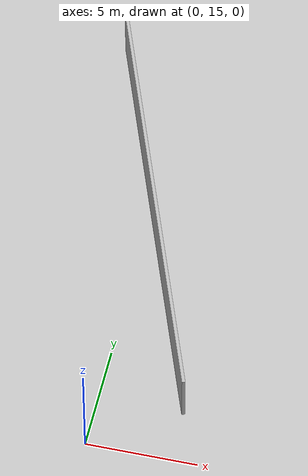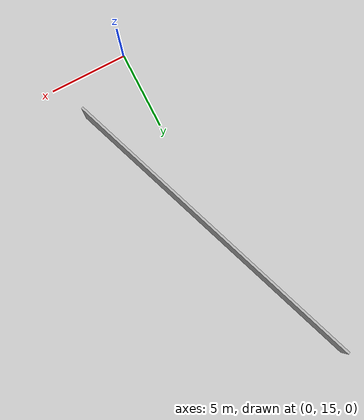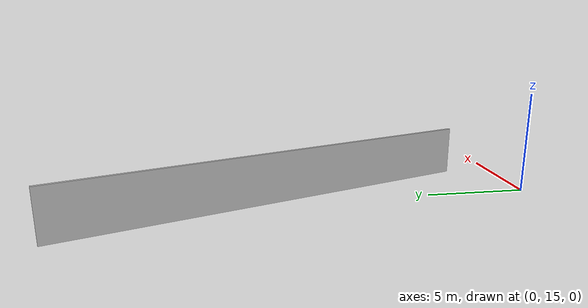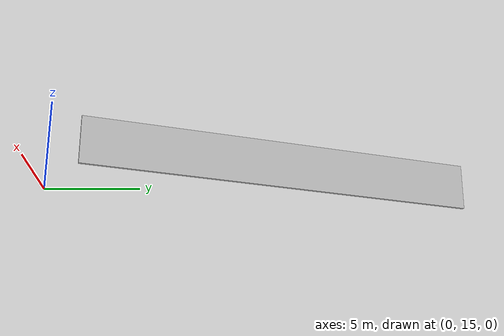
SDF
<?xml version="1.0" ?>
<sdf version="1.6">
  <model name="sps_2316">
    <pose frame="">0 0 0 0 -0 0</pose>
    <static>1</static>
    <self_collide>0</self_collide>
    <allow_auto_disable>0</allow_auto_disable>
    <link name="Wall2652">
      <kinematic>0</kinematic>
      <gravity>1</gravity>
      <self_collide>0</self_collide>
      <collision name="collision">
        <geometry>
          <box>
            <size>21.4001 0.15 2.5</size>
          </box>
        </geometry>
        <pose frame="">0 0 0 0 -0 0</pose>
      </collision>
      <visual name="visual">
        <geometry>
          <box>
            <size>21.4001 0.15 2.5</size>
          </box>
        </geometry>
        <pose frame="">0 0 0 0 -0 0</pose>
        <cast_shadows>1</cast_shadows>
        <transparency>0.0</transparency>
      </visual>
      <pose frame="">0.217552 27.5316 1.25 0 0 -1.22655</pose>
    </link>
  </model>
</sdf>
